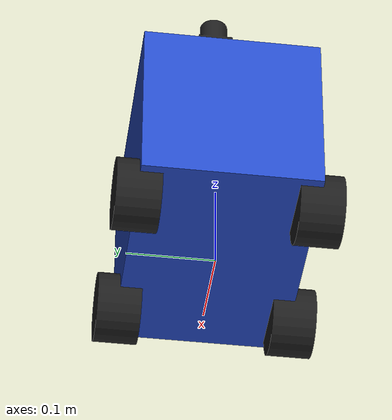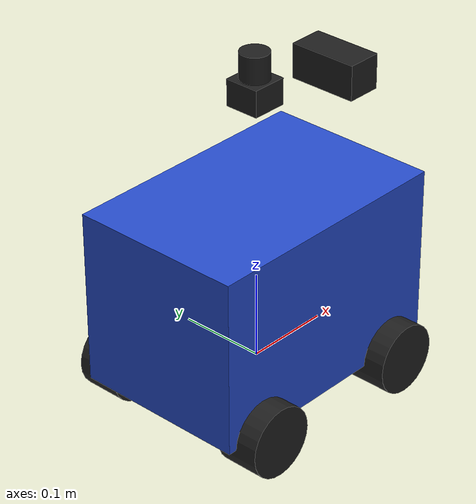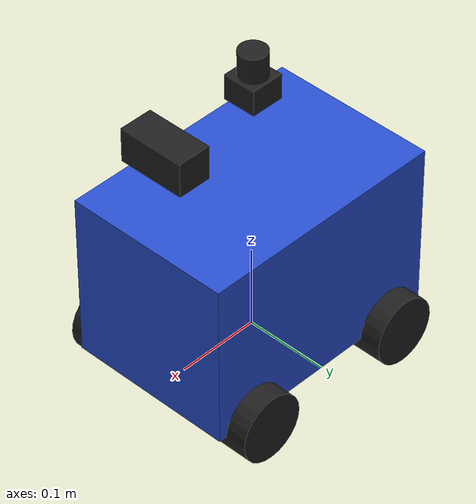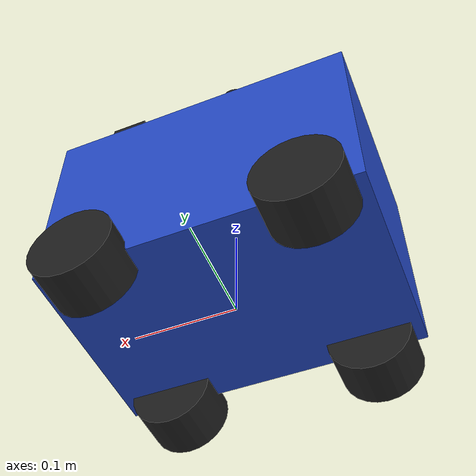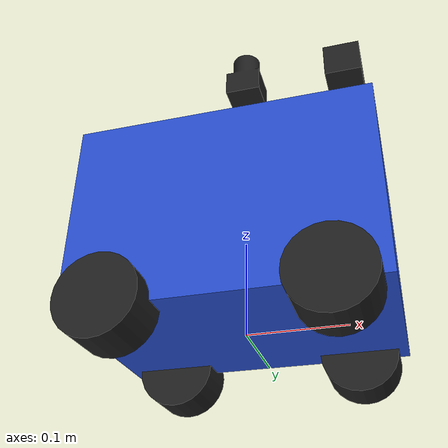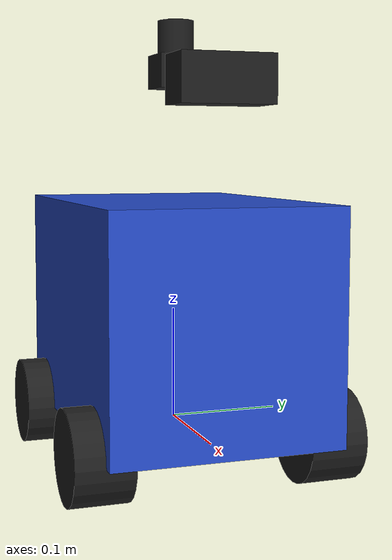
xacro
<?xml version='1.0'?>

<robot name="rosrover" xmlns:xacro="http://www.ros.org/wiki/xacro">

  <gazebo reference="chassis">
    <material>Gazebo/Blue</material>
  </gazebo>

  <gazebo reference="left_front_wheel">
    <material>Gazebo/Black</material>
  </gazebo>

  <gazebo reference="right_front_wheel">
    <material>Gazebo/Black</material>
  </gazebo>

  <gazebo reference="left_back_wheel">
    <material>Gazebo/Black</material>
  </gazebo>

  <gazebo reference="right_back_wheel">
    <material>Gazebo/Black</material>
  </gazebo>

  <gazebo reference="camera">
    <material>Gazebo/Black</material>
  </gazebo>

  <gazebo reference="lidar">
    <material>Gazebo/Black</material>
  </gazebo>

  <xacro:include filename="$(find my_robot)/urdf/rosrover.gazebo" />

  <link name="robot_footprint"></link>
  <joint name="robot_footprint_joint" type="fixed">
    <origin xyz="0 0 0" rpy="0 0 0" />
    <parent link="robot_footprint"/>
    <child link="chassis" />
  </joint>

  <link name='chassis'>
  <pose>0 0 0 0 0 0</pose>
    <inertial>
      <mass value="1.0"/>
      <origin xyz="0 0 0.1" rpy=" 0 0 0"/>
      <inertia
          ixx="0.1" ixy="0" ixz="0"
          iyy="0.1" iyz="0"
          izz="0.1"
      />
    </inertial>
            <collision name='chassis_collision'>
      		<origin xyz="0 0 0.1" rpy=" 0 0 0"/>
              <geometry>
                <box size="0.3 0.2 0.2">
                </box>
              </geometry>
            </collision>

            <visual name='chassis_visual'>
      		<origin xyz="0 0 0.1" rpy=" 0 0 0"/>
              <geometry>
                <box size="0.3 0.2 0.2">
                </box>
          	  <!--mesh filename="package://my_robot/meshes/rosroverlowpoly-body.stl" scale="0.001 0.001 0.001" /-->
              </geometry>
            </visual>
    </link>
    <link name="left_front_wheel" >

    <inertial>
      <mass value="2.0"/>
      <origin xyz="0 0 0" rpy="0 0 0"/>
      <inertia
          ixx="0.1" ixy="0" ixz="0"
          iyy="0.1" iyz="0"
          izz="0.1"
      />
    </inertial>

   	<collision name='left_front_wheel_collision'>
      		<origin xyz="0 0 0" rpy="1.5707 0 0"/>
      	<geometry>
        	<cylinder radius="0.04" length="0.05" />
      	</geometry>
    	</collision>

    	<visual name='left_front_wheel_visual'>
    		<origin xyz="0 0 0" rpy="1.5707 0 0"/>
      	<geometry>
        	<cylinder radius="0.04" length="0.05" />

      	</geometry>
    	</visual>
    </link>

	<joint type="continuous" name="left_front_wheel_hinge">
		<origin xyz="0.1 0.1 0" rpy="0 0 0"/>
    		<child link="left_front_wheel"/>
    		<parent link="chassis"/>
    		<axis xyz="0 1 0" rpy="0 0 0"/>
    		<limit effort="10000" velocity="1000"/>
    		<dynamics damping="1.0" friction="1.0"/>
  	</joint>

    <link name="right_front_wheel" >

    <inertial>
      <mass value="2.0"/>
      <origin xyz="0 0 0" rpy="0 0 0"/>
      <inertia
          ixx="0.1" ixy="0" ixz="0"
          iyy="0.1" iyz="0"
          izz="0.1"
      />
    </inertial>
    	<collision name='right_front_wheel_collision'>
      		<origin xyz="0 0 0" rpy="1.5707 0 0"/>
      	<geometry>
        	<cylinder radius="0.04" length="0.05" />
      	</geometry>
    </collision>
    <visual name='right_front_wheel_visual'>
    		<origin xyz="0 0 0" rpy="1.5707 0 0"/>
      	<geometry>
        	<cylinder radius="0.04" length="0.05" />
      	</geometry>
    </visual>
	</link>
	<joint type="continuous" name="right_front_wheel_hinge">
		<origin xyz="0.1 -0.1 0" rpy="0 1.5707 0"/>
    		<child link="right_front_wheel"/>
    		<parent link="chassis"/>
    		<axis xyz="0 1 0" rpy="0 0 0"/>
    		<limit effort="10000" velocity="1000"/>
    		<dynamics damping="1.0" friction="1.0"/>
  	</joint>

 <link name="left_back_wheel" >
    <inertial>
      <mass value="2.0"/>
      <origin xyz="0 0 0" rpy="0 0 0"/>
      <inertia
          ixx="0.1" ixy="0" ixz="0"
          iyy="0.1" iyz="0"
          izz="0.1"
      />
    </inertial>
    	<collision name='left_back_wheel_collision'>
      		<origin xyz="0 0 0" rpy="0 0 0"/>
      	<geometry>
        	<cylinder radius="0.04" length="0.05" />
      	</geometry>
    </collision>
    <visual name='left_back_wheel_visual'>
    		<origin xyz="0 0 0" rpy="0 0 0"/>
      	<geometry>
        	<cylinder radius="0.04" length="0.05" />
      	</geometry>
    </visual>
	</link>
	<joint type="continuous" name="left_back_wheel_hinge">
		<origin xyz="-0.1 0.1 0" rpy="1.5707 0 0"/>
    		<child link="left_back_wheel"/>
    		<parent link="chassis"/>
    		<axis xyz="0 1 0" rpy="0 0 0"/>
    		<limit effort="10000" velocity="1000"/>
    		<dynamics damping="1.0" friction="1.0"/>
  	</joint>

    <link name="right_back_wheel" >

    <inertial>
      <mass value="2.0"/>
      <origin xyz="0 0 0" rpy="0 0 0"/>
      <inertia
          ixx="0.1" ixy="0" ixz="0"
          iyy="0.1" iyz="0"
          izz="0.1"
      />
    </inertial>
    	<collision name='right_back_wheel_collision'>
      		<origin xyz="0 0 0" rpy="0 0 0"/>
      	<geometry>
        	<cylinder radius="0.04" length="0.05" />
      	</geometry>
    </collision>
    <visual name='right_back_wheel_visual'>
    		<origin xyz="0 0 0" rpy="0 0 0"/>
      	<geometry>
        	<cylinder radius="0.04" length="0.05" />
      	</geometry>
    </visual>
	</link>
	<joint type="continuous" name="right_back_wheel_hinge">
		<origin xyz="-0.1 -0.1 0" rpy="1.5707 0 0"/>
    		<child link="right_back_wheel"/>
    		<parent link="chassis"/>
    		<axis xyz="0 1 0" rpy="0 0 0"/>
    		<limit effort="10000" velocity="1000"/>
    		<dynamics damping="1.0" friction="1.0"/>
  	</joint>

 	  <link name='camera'>

    <inertial>
      <mass value="2.0"/>
      <origin xyz="0 0 0" rpy="0 0 0"/>
      <inertia
          ixx="0.1" ixy="0" ixz="0"
          iyy="0.1" iyz="0"
          izz="0.1"
      />
    </inertial>
            <pose>0 0 0 0 0 0</pose>
            <collision name='camera_collision'>
		<origin xyz="0 0 0" rpy="0 0 0"/>
              <geometry>
                <box size="0.04 0.08 0.04">
                </box>
              </geometry>
            </collision>
            <visual name='camera_visual'>
		<origin xyz="0 0 0" rpy="0 0 0"/>
              <geometry>
          	  <!--mesh filename="package://my_robot/meshes/rosroverlowpoly-camera.stl" scale="0.001 0.001 0.001"/-->
                <box size="0.04 0.08 0.04">
		</box>

              </geometry>
            </visual>
          </link>

	<joint type="fixed" name="camera_joint">
		<origin xyz="0.12 0 0.30" rpy="0 0 0"/>
    		<child link="camera"/>
    		<parent link="chassis"/>
    		<axis xyz="1 0 0" rpy="0 0 0"/>
    		<limit effort="10000" velocity="1000"/>
    		<dynamics damping="1.0" friction="1.0"/>
  	</joint>

 	  <link name='lidar'>
    <inertial>
      <mass value="2.0"/>
      <origin xyz="0 0 0" rpy="0 0 0"/>
      <inertia
          ixx="0.1" ixy="0" ixz="0"
          iyy="0.1" iyz="0"
          izz="0.1"
      />
    </inertial>
            <pose>-0 0 0 0 0 0</pose>
            <collision name='lidar_collision'>
    		<origin xyz="0 0 0" rpy="0 0 0"/>
              <geometry>
                <cylinder radius="0.02" length="0.100">
                </cylinder>
              </geometry>
            </collision>
            <visual name='lidar_visual'>
    		<origin xyz="0 0 0" rpy="0 0 0"/>
              <geometry>
		  <!--cylinder radius="0.02" length="0.100" /-->
          	  <mesh filename="package://my_robot/meshes/rosroverlowpoly-lidar.stl" scale=" 0.001 0.001 0.001"/>
              </geometry>
            </visual>
          </link>
	<joint type="fixed" name="lidar_joint">
		<origin xyz="0 0.05 0.3" rpy="0 0 0"/>
    		<child link="lidar"/>
    		<parent link="chassis"/>
    		<axis xyz="0 0 0 " rpy="0 0 0"/>
    		<limit effort="10000" velocity="1000"/>
    		<dynamics damping="1.0" friction="1.0"/>
  	</joint>
</robot>
